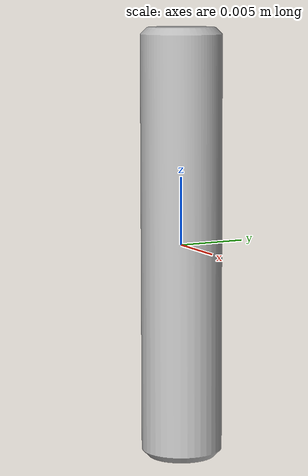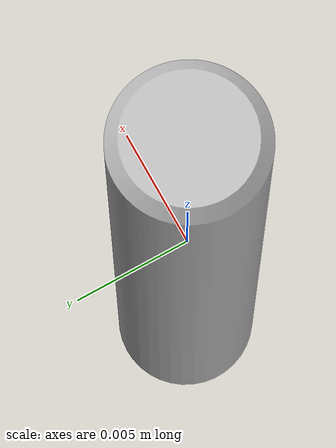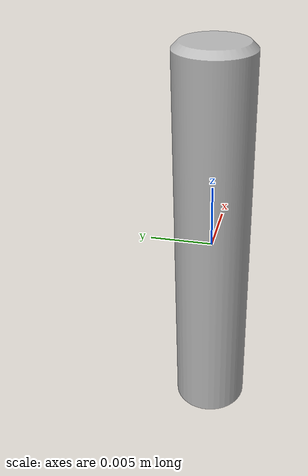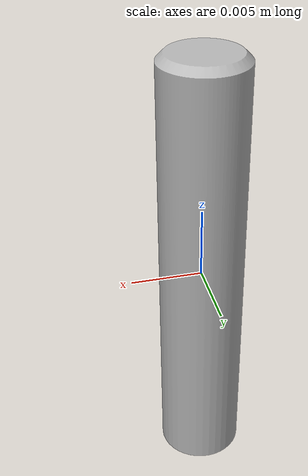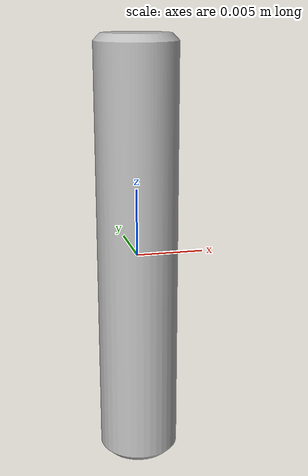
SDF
<?xml version="1.0" ?>
<sdf version="1.6">
  <model name="14)Stud 6×32mm">
    <static>true</static>
    <link name="link">
      <collision name="collision">
        <geometry>
          <mesh>
            <scale>0.001 0.001 0.001</scale>
            <uri>model://14)Stud 6×32mm/14)Stud 6×32mm.stl</uri>
          </mesh>
        </geometry>
      </collision>
      <visual name="visual">
        <geometry>
          <mesh>
            <scale>0.001 0.001 0.001</scale>
            <uri>model://14)Stud 6×32mm/14)Stud 6×32mm.dae</uri>
          </mesh>
        </geometry>
      </visual>
    </link>
  </model>
</sdf>
